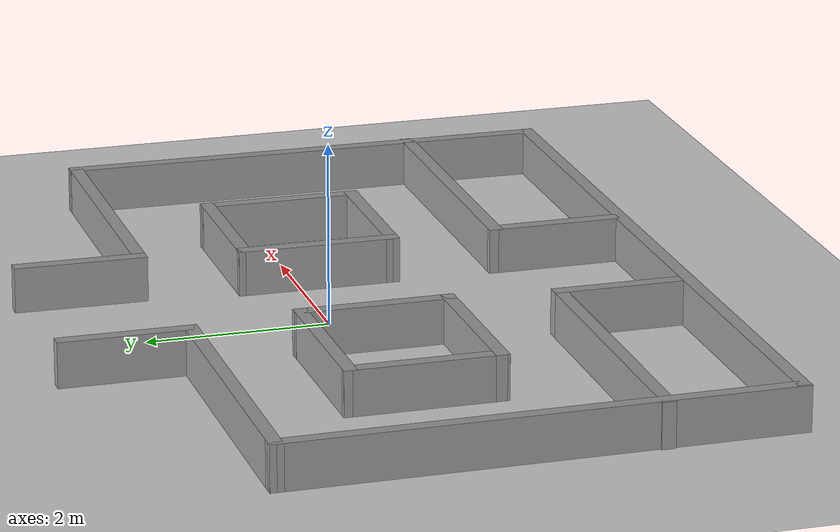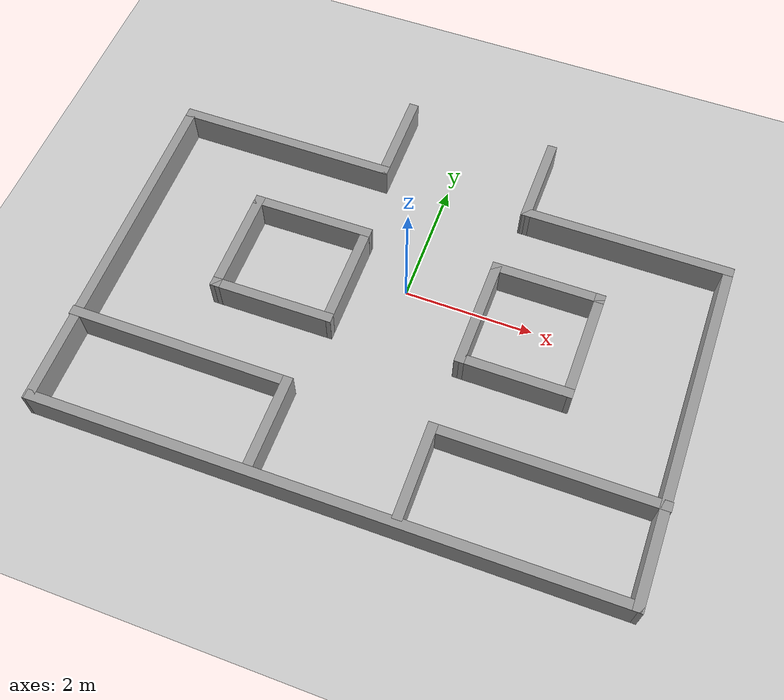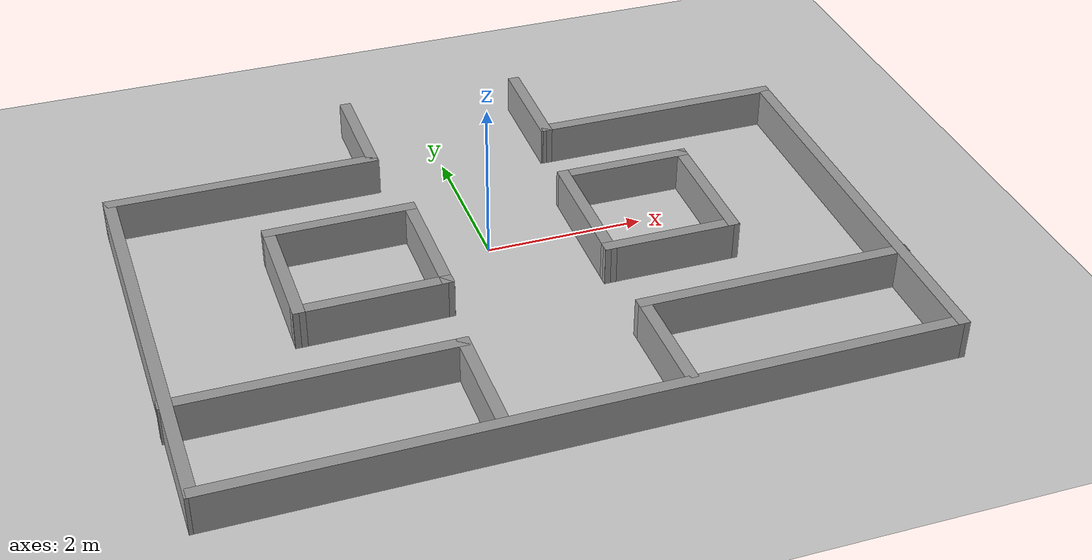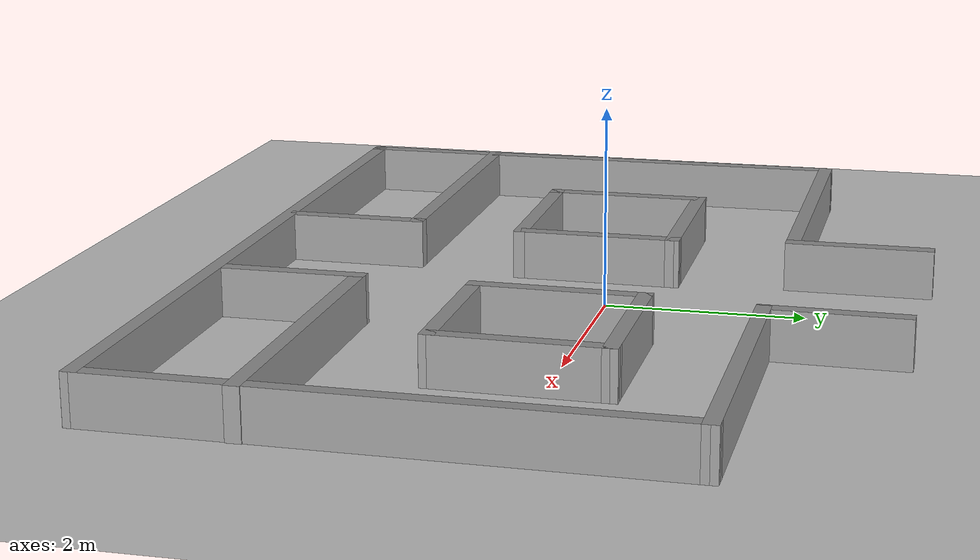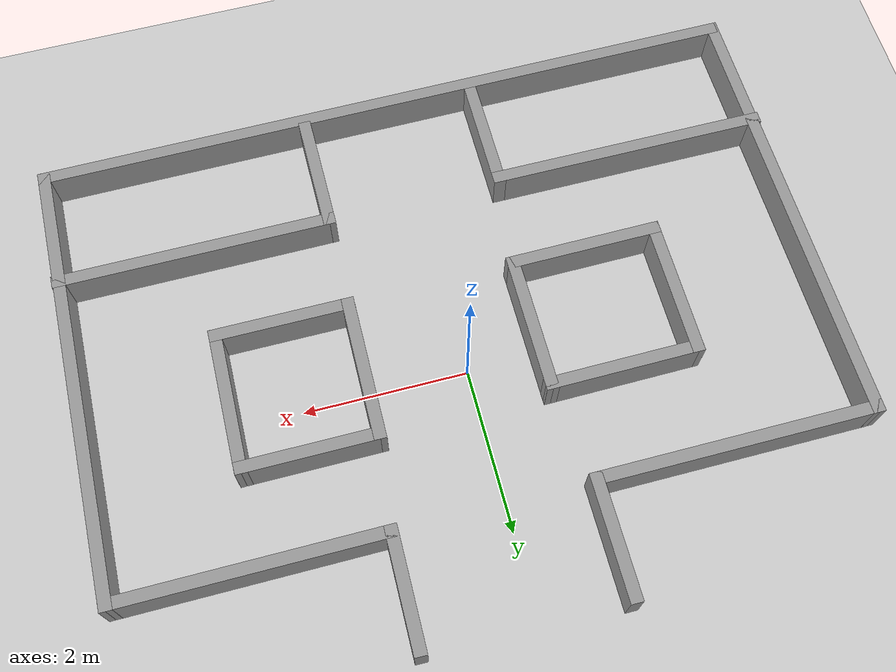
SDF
<sdf version="1.4">
  <world name="default">

    <scene>
      <ambient>0.4 0.4 0.4 1</ambient>
      <background>0.7 0.7 0.7 1</background>
      <shadows>true</shadows>
    </scene>

    <!-- A global light source -->
    <include>
      <uri>model://sun</uri>
    </include>

    <!-- A ground plane -->
    <include>
      <uri>model://ground_plane</uri>
    </include>

    <!-- Maze -->
    <include>
      <uri>model://maze_3</uri>
    </include>

    <physics type="ode">
      <real_time_update_rate>1000.0</real_time_update_rate>
      <max_step_size>0.001</max_step_size>
      <real_time_factor>1</real_time_factor>
      <ode>
        <solver>
          <type>quick</type>
          <iters>150</iters>
          <precon_iters>0</precon_iters>
          <sor>1.400000</sor>
          <use_dynamic_moi_rescaling>1</use_dynamic_moi_rescaling>
        </solver>
        <constraints>
          <cfm>0.00001</cfm>
          <erp>0.2</erp>
          <contact_max_correcting_vel>2000.000000</contact_max_correcting_vel>
          <contact_surface_layer>0.01000</contact_surface_layer>
        </constraints>
      </ode>
    </physics>
  </world>

</sdf>

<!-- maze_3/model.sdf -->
<sdf version='1.7'>
  <model name='maze_3'>
    <pose>0.06753 -0.291875 0 0 -0 0</pose>
    <link name='Wall_0'>
      <collision name='Wall_0_Collision'>
        <geometry>
          <box>
            <size>1.92774 0.15 0.5</size>
          </box>
        </geometry>
        <pose>0 0 0.25 0 -0 0</pose>
      </collision>
      <visual name='Wall_0_Visual'>
        <pose>0 0 0.25 0 -0 0</pose>
        <geometry>
          <box>
            <size>1.92774 0.15 0.5</size>
          </box>
        </geometry>
        <material>
          <script>
            <uri>file://media/materials/scripts/gazebo.material</uri>
            <name>Gazebo/Grey</name>
          </script>
          <ambient>1 1 1 1</ambient>
        </material>
        <meta>
          <layer>0</layer>
        </meta>
      </visual>
      <pose>-1.80403 -0.777625 0 0 -0 -3.13428</pose>
    </link>
    <link name='Wall_1'>
      <collision name='Wall_1_Collision'>
        <geometry>
          <box>
            <size>1.75 0.15 0.5</size>
          </box>
        </geometry>
        <pose>0 0 0.25 0 -0 0</pose>
      </collision>
      <visual name='Wall_1_Visual'>
        <pose>0 0 0.25 0 -0 0</pose>
        <geometry>
          <box>
            <size>1.75 0.15 0.5</size>
          </box>
        </geometry>
        <material>
          <script>
            <uri>file://media/materials/scripts/gazebo.material</uri>
            <name>Gazebo/Grey</name>
          </script>
          <ambient>1 1 1 1</ambient>
        </material>
        <meta>
          <layer>0</layer>
        </meta>
      </visual>
      <pose>-2.69253 0.015875 0 0 -0 1.5708</pose>
    </link>
    <link name='Wall_10'>
      <collision name='Wall_10_Collision'>
        <geometry>
          <box>
            <size>1.75 0.15 0.5</size>
          </box>
        </geometry>
        <pose>0 0 0.25 0 -0 0</pose>
      </collision>
      <visual name='Wall_10_Visual'>
        <pose>0 0 0.25 0 -0 0</pose>
        <geometry>
          <box>
            <size>1.75 0.15 0.5</size>
          </box>
        </geometry>
        <material>
          <script>
            <uri>file://media/materials/scripts/gazebo.material</uri>
            <name>Gazebo/Grey</name>
          </script>
          <ambient>1 1 1 1</ambient>
        </material>
        <meta>
          <layer>0</layer>
        </meta>
      </visual>
      <pose>1.92147 -0.740125 0 0 -0 0</pose>
    </link>
    <link name='Wall_11'>
      <collision name='Wall_11_Collision'>
        <geometry>
          <box>
            <size>1.80113 0.15 0.5</size>
          </box>
        </geometry>
        <pose>0 0 0.25 0 -0 0</pose>
      </collision>
      <visual name='Wall_11_Visual'>
        <pose>0 0 0.25 0 -0 0</pose>
        <geometry>
          <box>
            <size>1.80113 0.15 0.5</size>
          </box>
        </geometry>
        <material>
          <script>
            <uri>file://media/materials/scripts/gazebo.material</uri>
            <name>Gazebo/Grey</name>
          </script>
          <ambient>1 1 1 1</ambient>
        </material>
        <meta>
          <layer>0</layer>
        </meta>
      </visual>
      <pose>2.73197 0.085375 0 0 -0 1.55808</pose>
    </link>
    <link name='Wall_12'>
      <collision name='Wall_12_Collision'>
        <geometry>
          <box>
            <size>1.75 0.15 0.5</size>
          </box>
        </geometry>
        <pose>0 0 0.25 0 -0 0</pose>
      </collision>
      <visual name='Wall_12_Visual'>
        <pose>0 0 0.25 0 -0 0</pose>
        <geometry>
          <box>
            <size>1.75 0.15 0.5</size>
          </box>
        </geometry>
        <material>
          <script>
            <uri>file://media/materials/scripts/gazebo.material</uri>
            <name>Gazebo/Grey</name>
          </script>
          <ambient>1 1 1 1</ambient>
        </material>
        <meta>
          <layer>0</layer>
        </meta>
      </visual>
      <pose>1.94247 0.910875 0 0 -0 3.14159</pose>
    </link>
    <link name='Wall_15'>
      <collision name='Wall_15_Collision'>
        <geometry>
          <box>
            <size>3.5 0.15 0.5</size>
          </box>
        </geometry>
        <pose>0 0 0.25 0 -0 0</pose>
      </collision>
      <visual name='Wall_15_Visual'>
        <pose>0 0 0.25 0 -0 0</pose>
        <geometry>
          <box>
            <size>3.5 0.15 0.5</size>
          </box>
        </geometry>
        <material>
          <script>
            <uri>file://media/materials/scripts/gazebo.material</uri>
            <name>Gazebo/Grey</name>
          </script>
          <ambient>1 1 1 1</ambient>
        </material>
        <meta>
          <layer>0</layer>
        </meta>
      </visual>
      <pose>-2.75453 2.04387 0 0 -0 0</pose>
    </link>
    <link name='Wall_16'>
      <collision name='Wall_16_Collision'>
        <geometry>
          <box>
            <size>1.5 0.15 0.5</size>
          </box>
        </geometry>
        <pose>0 0 0.25 0 -0 0</pose>
      </collision>
      <visual name='Wall_16_Visual'>
        <pose>0 0 0.25 0 -0 0</pose>
        <geometry>
          <box>
            <size>1.5 0.15 0.5</size>
          </box>
        </geometry>
        <material>
          <script>
            <uri>file://media/materials/scripts/gazebo.material</uri>
            <name>Gazebo/Grey</name>
          </script>
          <ambient>1 1 1 1</ambient>
        </material>
        <meta>
          <layer>0</layer>
        </meta>
      </visual>
      <pose>-1.07953 2.71888 0 0 -0 1.5708</pose>
    </link>
    <link name='Wall_18'>
      <collision name='Wall_18_Collision'>
        <geometry>
          <box>
            <size>1.45683 0.15 0.5</size>
          </box>
        </geometry>
        <pose>0 0 0.25 0 -0 0</pose>
      </collision>
      <visual name='Wall_18_Visual'>
        <pose>0 0 0.25 0 -0 0</pose>
        <geometry>
          <box>
            <size>1.45683 0.15 0.5</size>
          </box>
        </geometry>
        <material>
          <script>
            <uri>file://media/materials/scripts/gazebo.material</uri>
            <name>Gazebo/Grey</name>
          </script>
          <ambient>1 1 1 1</ambient>
        </material>
        <meta>
          <layer>0</layer>
        </meta>
      </visual>
      <pose>1.28495 2.69152 0 0 -0 -1.58444</pose>
    </link>
    <link name='Wall_2'>
      <collision name='Wall_2_Collision'>
        <geometry>
          <box>
            <size>1.92735 0.15 0.5</size>
          </box>
        </geometry>
        <pose>0 0 0.25 0 -0 0</pose>
      </collision>
      <visual name='Wall_2_Visual'>
        <pose>0 0 0.25 0 -0 0</pose>
        <geometry>
          <box>
            <size>1.92735 0.15 0.5</size>
          </box>
        </geometry>
        <material>
          <script>
            <uri>file://media/materials/scripts/gazebo.material</uri>
            <name>Gazebo/Grey</name>
          </script>
          <ambient>1 1 1 1</ambient>
        </material>
        <meta>
          <layer>0</layer>
        </meta>
      </visual>
      <pose>-1.80403 0.822375 0 0 -0 0.007316</pose>
    </link>
    <link name='Wall_21'>
      <collision name='Wall_21_Collision'>
        <geometry>
          <box>
            <size>5.54112 0.15 0.5</size>
          </box>
        </geometry>
        <pose>0 0 0.25 0 -0 0</pose>
      </collision>
      <visual name='Wall_21_Visual'>
        <pose>0 0 0.25 0 -0 0</pose>
        <geometry>
          <box>
            <size>5.54112 0.15 0.5</size>
          </box>
        </geometry>
        <material>
          <script>
            <uri>file://media/materials/scripts/gazebo.material</uri>
            <name>Gazebo/Grey</name>
          </script>
          <ambient>1 1 1 1</ambient>
        </material>
        <meta>
          <layer>0</layer>
        </meta>
      </visual>
      <pose>4.40539 -0.657288 0 0 -0 -1.57976</pose>
    </link>
    <link name='Wall_22'>
      <collision name='Wall_22_Collision'>
        <geometry>
          <box>
            <size>8.88747 0.15 0.5</size>
          </box>
        </geometry>
        <pose>0 0 0.25 0 -0 0</pose>
      </collision>
      <visual name='Wall_22_Visual'>
        <pose>0 0 0.25 0 -0 0</pose>
        <geometry>
          <box>
            <size>8.88747 0.15 0.5</size>
          </box>
        </geometry>
        <material>
          <script>
            <uri>file://media/materials/scripts/gazebo.material</uri>
            <name>Gazebo/Grey</name>
          </script>
          <ambient>1 1 1 1</ambient>
        </material>
        <meta>
          <layer>0</layer>
        </meta>
      </visual>
      <pose>0.012552 -3.37297 0 0 -0 -3.13696</pose>
    </link>
    <link name='Wall_23'>
      <collision name='Wall_23_Collision'>
        <geometry>
          <box>
            <size>5.58729 0.15 0.5</size>
          </box>
        </geometry>
        <pose>0 0 0.25 0 -0 0</pose>
      </collision>
      <visual name='Wall_23_Visual'>
        <pose>0 0 0.25 0 -0 0</pose>
        <geometry>
          <box>
            <size>5.58729 0.15 0.5</size>
          </box>
        </geometry>
        <material>
          <script>
            <uri>file://media/materials/scripts/gazebo.material</uri>
            <name>Gazebo/Grey</name>
          </script>
          <ambient>1 1 1 1</ambient>
        </material>
        <meta>
          <layer>0</layer>
        </meta>
      </visual>
      <pose>-4.40453 -0.674657 0 0 -0 1.57999</pose>
    </link>
    <link name='Wall_25'>
      <collision name='Wall_25_Collision'>
        <geometry>
          <box>
            <size>3.5 0.15 0.5</size>
          </box>
        </geometry>
        <pose>0 0 0.25 0 -0 0</pose>
      </collision>
      <visual name='Wall_25_Visual'>
        <pose>0 0 0.25 0 -0 0</pose>
        <geometry>
          <box>
            <size>3.5 0.15 0.5</size>
          </box>
        </geometry>
        <material>
          <script>
            <uri>file://media/materials/scripts/gazebo.material</uri>
            <name>Gazebo/Grey</name>
          </script>
          <ambient>1 1 1 1</ambient>
        </material>
        <meta>
          <layer>0</layer>
        </meta>
      </visual>
      <pose>-2.74153 -1.94813 0 0 -0 0</pose>
    </link>
    <link name='Wall_26'>
      <collision name='Wall_26_Collision'>
        <geometry>
          <box>
            <size>1.5 0.15 0.5</size>
          </box>
        </geometry>
        <pose>0 0 0.25 0 -0 0</pose>
      </collision>
      <visual name='Wall_26_Visual'>
        <pose>0 0 0.25 0 -0 0</pose>
        <geometry>
          <box>
            <size>1.5 0.15 0.5</size>
          </box>
        </geometry>
        <material>
          <script>
            <uri>file://media/materials/scripts/gazebo.material</uri>
            <name>Gazebo/Grey</name>
          </script>
          <ambient>1 1 1 1</ambient>
        </material>
        <meta>
          <layer>0</layer>
        </meta>
      </visual>
      <pose>-1.06653 -2.62312 0 0 -0 -1.5708</pose>
    </link>
    <link name='Wall_28'>
      <collision name='Wall_28_Collision'>
        <geometry>
          <box>
            <size>1.5 0.15 0.5</size>
          </box>
        </geometry>
        <pose>0 0 0.25 0 -0 0</pose>
      </collision>
      <visual name='Wall_28_Visual'>
        <pose>0 0 0.25 0 -0 0</pose>
        <geometry>
          <box>
            <size>1.5 0.15 0.5</size>
          </box>
        </geometry>
        <material>
          <script>
            <uri>file://media/materials/scripts/gazebo.material</uri>
            <name>Gazebo/Grey</name>
          </script>
          <ambient>1 1 1 1</ambient>
        </material>
        <meta>
          <layer>0</layer>
        </meta>
      </visual>
      <pose>1.09671 -2.58391 0 0 -0 1.5708</pose>
    </link>
    <link name='Wall_29'>
      <collision name='Wall_29_Collision'>
        <geometry>
          <box>
            <size>3.46089 0.15 0.5</size>
          </box>
        </geometry>
        <pose>0 0 0.25 0 -0 0</pose>
      </collision>
      <visual name='Wall_29_Visual'>
        <pose>0 0 0.25 0 -0 0</pose>
        <geometry>
          <box>
            <size>3.46089 0.15 0.5</size>
          </box>
        </geometry>
        <material>
          <script>
            <uri>file://media/materials/scripts/gazebo.material</uri>
            <name>Gazebo/Grey</name>
          </script>
          <ambient>1 1 1 1</ambient>
        </material>
        <meta>
          <layer>0</layer>
        </meta>
      </visual>
      <pose>2.75209 -1.90552 0 0 -0 0.002049</pose>
    </link>
    <link name='Wall_3'>
      <collision name='Wall_3_Collision'>
        <geometry>
          <box>
            <size>1.75 0.15 0.5</size>
          </box>
        </geometry>
        <pose>0 0 0.25 0 -0 0</pose>
      </collision>
      <visual name='Wall_3_Visual'>
        <pose>0 0 0.25 0 -0 0</pose>
        <geometry>
          <box>
            <size>1.75 0.15 0.5</size>
          </box>
        </geometry>
        <material>
          <script>
            <uri>file://media/materials/scripts/gazebo.material</uri>
            <name>Gazebo/Grey</name>
          </script>
          <ambient>1 1 1 1</ambient>
        </material>
        <meta>
          <layer>0</layer>
        </meta>
      </visual>
      <pose>-0.91553 0.028875 0 0 -0 -1.5708</pose>
    </link>
    <link name='Wall_31'>
      <collision name='Wall_31_Collision'>
        <geometry>
          <box>
            <size>3.28012 0.15 0.5</size>
          </box>
        </geometry>
        <pose>0 0 0.25 0 -0 0</pose>
      </collision>
      <visual name='Wall_31_Visual'>
        <pose>0 0 0.25 0 -0 0</pose>
        <geometry>
          <box>
            <size>3.28012 0.15 0.5</size>
          </box>
        </geometry>
        <material>
          <script>
            <uri>file://media/materials/scripts/gazebo.material</uri>
            <name>Gazebo/Grey</name>
          </script>
          <ambient>1 1 1 1</ambient>
        </material>
        <meta>
          <layer>0</layer>
        </meta>
      </visual>
      <pose>2.86449 2.03816 0 0 -0 0</pose>
    </link>
    <link name='Wall_5'>
      <collision name='Wall_5_Collision'>
        <geometry>
          <box>
            <size>1.80113 0.15 0.5</size>
          </box>
        </geometry>
        <pose>0 0 0.25 0 -0 0</pose>
      </collision>
      <visual name='Wall_5_Visual'>
        <pose>0 0 0.25 0 -0 0</pose>
        <geometry>
          <box>
            <size>1.80113 0.15 0.5</size>
          </box>
        </geometry>
        <material>
          <script>
            <uri>file://media/materials/scripts/gazebo.material</uri>
            <name>Gazebo/Grey</name>
          </script>
          <ambient>1 1 1 1</ambient>
        </material>
        <meta>
          <layer>0</layer>
        </meta>
      </visual>
      <pose>1.13197 0.085375 0 0 -0 -1.58352</pose>
    </link>
    <static>1</static>
  </model>
</sdf>
